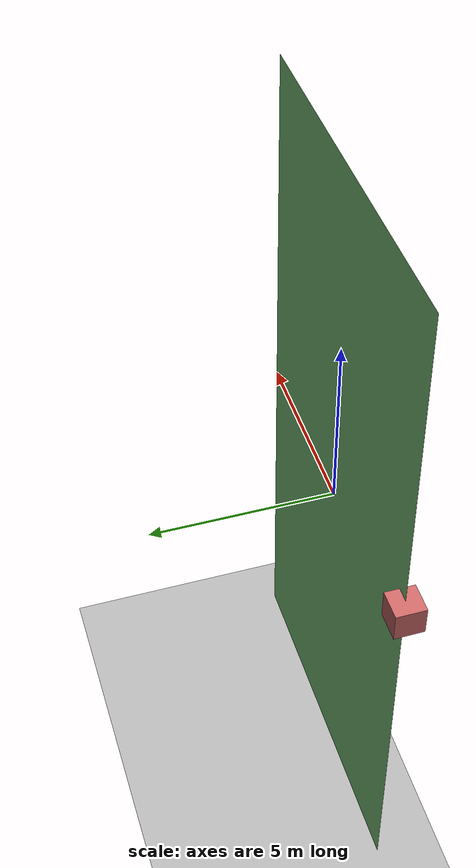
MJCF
<mujoco>
  <option gravity="0 0 -9.81"/>
  <worldbody>
    <body name="inclined_plane" pos="0 0 0">
      <geom type="plane" size="5 10 0.1" rgba="0.5 0.8 0.5 1" friction="0.4 0.4 0.4" quat="0.7 0.7 0 0"/>
    </body>
    <body name="surface" pos="-10 0 -10">
      <geom type="plane" size="25 25 0.1" rgba="0.7 0.7 0.7 1" friction="1 1 1"/>
    </body>
    <body name="block" pos="-5 0 1">
      <geom type="box" size="0.4 0.4 0.4" density="1" rgba="0.8 0.4 0.4 1"/>
      <joint name="block_joint" type="free"/>
    </body>
  </worldbody>
</mujoco>
